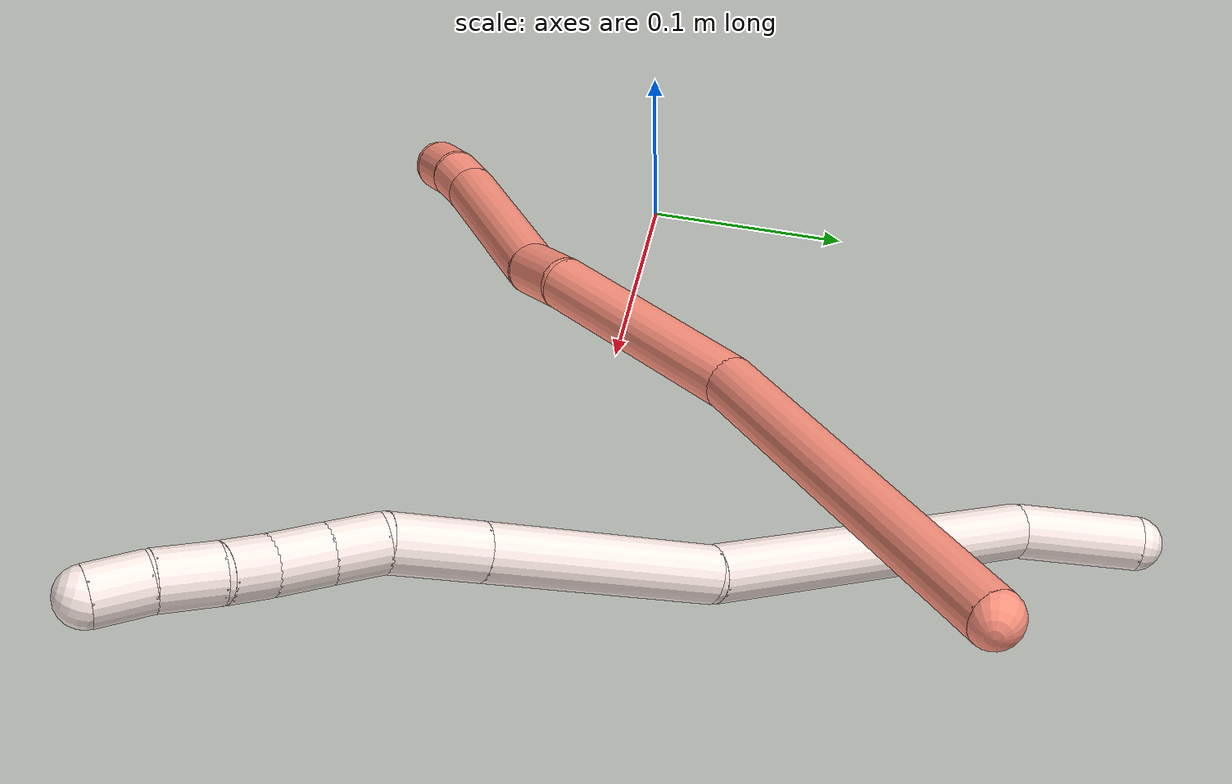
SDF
<sdf version="1.7">
 <world name="default">
  <model name="11">
   <static>0</static>
   <link name="11">
    <collision name="collision-cylinder-e_1_1_4">
     <pose>-0.0001 -0.004616 0.028976 0.157962 -0.003402 -0.000269</pose>
     <geometry><cylinder><radius>0.0125</radius><length>0.058682</length></cylinder></geometry>
     <surface>
      <friction><ode><mu>1.16</mu><mu2>1.16</mu2><slip1>0</slip1><slip2>0</slip2></ode></friction>
      <contact><ode><kp>1e+06</kp><kd>1</kd><max_vel>0</max_vel><min_depth>0.001</min_depth></ode></contact>
     </surface>
    </collision>
    <visual name="visual-cylinder-e_1_1_4">
     <pose>-0.0001 -0.004616 0.028976 0.157962 -0.003402 -0.000269</pose>
     <geometry><cylinder><radius>0.0125</radius><length>0.058682</length></cylinder></geometry>
     <material><ambient>1 0.933333 0.909804 1</ambient></material>
    </visual>
    <collision name="collision-cylinder-e_2_4_5">
     <pose>0.039125 -0.033198 0.133144 0.308565 0.462277 0.073168</pose>
     <geometry><cylinder><radius>0.0125</radius><length>0.176351</length></cylinder></geometry>
     <surface>
      <friction><ode><mu>1.16</mu><mu2>1.16</mu2><slip1>0</slip1><slip2>0</slip2></ode></friction>
      <contact><ode><kp>1e+06</kp><kd>1</kd><max_vel>0</max_vel><min_depth>0.001</min_depth></ode></contact>
     </surface>
    </collision>
    <visual name="visual-cylinder-e_2_4_5">
     <pose>0.039125 -0.033198 0.133144 0.308565 0.462277 0.073168</pose>
     <geometry><cylinder><radius>0.0125</radius><length>0.176351</length></cylinder></geometry>
     <material><ambient>1 0.933333 0.909804 1</ambient></material>
    </visual>
    <collision name="collision-cylinder-e_3_5_6">
     <pose>0.09289 -0.063232 0.258077 0.121363 0.280568 0.017158</pose>
     <geometry><cylinder><radius>0.0125</radius><length>0.104294</length></cylinder></geometry>
     <surface>
      <friction><ode><mu>1.16</mu><mu2>1.16</mu2><slip1>0</slip1><slip2>0</slip2></ode></friction>
      <contact><ode><kp>1e+06</kp><kd>1</kd><max_vel>0</max_vel><min_depth>0.001</min_depth></ode></contact>
     </surface>
    </collision>
    <visual name="visual-cylinder-e_3_5_6">
     <pose>0.09289 -0.063232 0.258077 0.121363 0.280568 0.017158</pose>
     <geometry><cylinder><radius>0.0125</radius><length>0.104294</length></cylinder></geometry>
     <material><ambient>1 0.933333 0.909804 1</ambient></material>
    </visual>
    <collision name="collision-cylinder-e_4_6_7">
     <pose>0.11353 -0.071678 0.327602 0.119711 0.301623 0.018213</pose>
     <geometry><cylinder><radius>0.0125</radius><length>0.041742</length></cylinder></geometry>
     <surface>
      <friction><ode><mu>1.16</mu><mu2>1.16</mu2><slip1>0</slip1><slip2>0</slip2></ode></friction>
      <contact><ode><kp>1e+06</kp><kd>1</kd><max_vel>0</max_vel><min_depth>0.001</min_depth></ode></contact>
     </surface>
    </collision>
    <visual name="visual-cylinder-e_4_6_7">
     <pose>0.11353 -0.071678 0.327602 0.119711 0.301623 0.018213</pose>
     <geometry><cylinder><radius>0.0125</radius><length>0.041742</length></cylinder></geometry>
     <material><ambient>1 0.933333 0.909804 1</ambient></material>
    </visual>
    <collision name="collision-cylinder-e_5_7_8">
     <pose>0.122185 -0.078622 0.35752 0.423212 0.217485 0.046897</pose>
     <geometry><cylinder><radius>0.0125</radius><length>0.022759</length></cylinder></geometry>
     <surface>
      <friction><ode><mu>1.16</mu><mu2>1.16</mu2><slip1>0</slip1><slip2>0</slip2></ode></friction>
      <contact><ode><kp>1e+06</kp><kd>1</kd><max_vel>0</max_vel><min_depth>0.001</min_depth></ode></contact>
     </surface>
    </collision>
    <visual name="visual-cylinder-e_5_7_8">
     <pose>0.122185 -0.078622 0.35752 0.423212 0.217485 0.046897</pose>
     <geometry><cylinder><radius>0.0125</radius><length>0.022759</length></cylinder></geometry>
     <material><ambient>1 0.933333 0.909804 1</ambient></material>
    </visual>
    <collision name="collision-cylinder-e_6_8_9">
     <pose>0.128129 -0.087886 0.378303 0.415589 0.291059 0.061783</pose>
     <geometry><cylinder><radius>0.0125</radius><length>0.024308</length></cylinder></geometry>
     <surface>
      <friction><ode><mu>1.16</mu><mu2>1.16</mu2><slip1>0</slip1><slip2>0</slip2></ode></friction>
      <contact><ode><kp>1e+06</kp><kd>1</kd><max_vel>0</max_vel><min_depth>0.001</min_depth></ode></contact>
     </surface>
    </collision>
    <visual name="visual-cylinder-e_6_8_9">
     <pose>0.128129 -0.087886 0.378303 0.415589 0.291059 0.061783</pose>
     <geometry><cylinder><radius>0.0125</radius><length>0.024308</length></cylinder></geometry>
     <material><ambient>1 0.933333 0.909804 1</ambient></material>
    </visual>
    <collision name="collision-cylinder-e_7_9_10">
     <pose>0.136527 -0.095513 0.397454 0.331564 0.499936 0.085383</pose>
     <geometry><cylinder><radius>0.0125</radius><length>0.020487</length></cylinder></geometry>
     <surface>
      <friction><ode><mu>1.16</mu><mu2>1.16</mu2><slip1>0</slip1><slip2>0</slip2></ode></friction>
      <contact><ode><kp>1e+06</kp><kd>1</kd><max_vel>0</max_vel><min_depth>0.001</min_depth></ode></contact>
     </surface>
    </collision>
    <visual name="visual-cylinder-e_7_9_10">
     <pose>0.136527 -0.095513 0.397454 0.331564 0.499936 0.085383</pose>
     <geometry><cylinder><radius>0.0125</radius><length>0.020487</length></cylinder></geometry>
     <material><ambient>1 0.933333 0.909804 1</ambient></material>
    </visual>
    <collision name="collision-cylinder-e_8_10_11">
     <pose>0.145123 -0.102624 0.418123 0.331225 0.27897 0.046924</pose>
     <geometry><cylinder><radius>0.0125</radius><length>0.026771</length></cylinder></geometry>
     <surface>
      <friction><ode><mu>1.16</mu><mu2>1.16</mu2><slip1>0</slip1><slip2>0</slip2></ode></friction>
      <contact><ode><kp>1e+06</kp><kd>1</kd><max_vel>0</max_vel><min_depth>0.001</min_depth></ode></contact>
     </surface>
    </collision>
    <visual name="visual-cylinder-e_8_10_11">
     <pose>0.145123 -0.102624 0.418123 0.331225 0.27897 0.046924</pose>
     <geometry><cylinder><radius>0.0125</radius><length>0.026771</length></cylinder></geometry>
     <material><ambient>1 0.933333 0.909804 1</ambient></material>
    </visual>
    <collision name="collision-cylinder-e_9_11_2">
     <pose>0.15151 -0.112131 0.44105 0.459437 0.221378 0.051969</pose>
     <geometry><cylinder><radius>0.0125</radius><length>0.024606</length></cylinder></geometry>
     <surface>
      <friction><ode><mu>1.16</mu><mu2>1.16</mu2><slip1>0</slip1><slip2>0</slip2></ode></friction>
      <contact><ode><kp>1e+06</kp><kd>1</kd><max_vel>0</max_vel><min_depth>0.001</min_depth></ode></contact>
     </surface>
    </collision>
    <visual name="visual-cylinder-e_9_11_2">
     <pose>0.15151 -0.112131 0.44105 0.459437 0.221378 0.051969</pose>
     <geometry><cylinder><radius>0.0125</radius><length>0.024606</length></cylinder></geometry>
     <material><ambient>1 0.933333 0.909804 1</ambient></material>
    </visual>
    <collision name="collision-sphere-2">
     <pose>0.154212 -0.117454 0.451808 0 -0 0</pose>
     <geometry><sphere><radius>0.0125</radius></sphere></geometry>
     <surface>
      <friction><ode><mu>1.16</mu><mu2>1.16</mu2><slip1>0</slip1><slip2>0</slip2></ode></friction>
      <contact><ode><kp>1e+06</kp><kd>1</kd><max_vel>0</max_vel><min_depth>0.001</min_depth></ode></contact>
     </surface>
    </collision>
    <visual name="visual-sphere-2">
     <pose>0.154212 -0.117454 0.451808 0 -0 0</pose>
     <geometry><sphere><radius>0.0125</radius></sphere></geometry>
     <material><ambient>1 0.933333 0.909804 1</ambient></material>
    </visual>
    <collision name="collision-sphere-11">
     <pose>0.148809 -0.106809 0.430292 0 -0 0</pose>
     <geometry><sphere><radius>0.0125</radius></sphere></geometry>
     <surface>
      <friction><ode><mu>1.16</mu><mu2>1.16</mu2><slip1>0</slip1><slip2>0</slip2></ode></friction>
      <contact><ode><kp>1e+06</kp><kd>1</kd><max_vel>0</max_vel><min_depth>0.001</min_depth></ode></contact>
     </surface>
    </collision>
    <visual name="visual-sphere-11">
     <pose>0.148809 -0.106809 0.430292 0 -0 0</pose>
     <geometry><sphere><radius>0.0125</radius></sphere></geometry>
     <material><ambient>1 0.933333 0.909804 1</ambient></material>
    </visual>
    <collision name="collision-sphere-10">
     <pose>0.141437 -0.098439 0.405954 0 -0 0</pose>
     <geometry><sphere><radius>0.0125</radius></sphere></geometry>
     <surface>
      <friction><ode><mu>1.16</mu><mu2>1.16</mu2><slip1>0</slip1><slip2>0</slip2></ode></friction>
      <contact><ode><kp>1e+06</kp><kd>1</kd><max_vel>0</max_vel><min_depth>0.001</min_depth></ode></contact>
     </surface>
    </collision>
    <visual name="visual-sphere-10">
     <pose>0.141437 -0.098439 0.405954 0 -0 0</pose>
     <geometry><sphere><radius>0.0125</radius></sphere></geometry>
     <material><ambient>1 0.933333 0.909804 1</ambient></material>
    </visual>
    <collision name="collision-sphere-9">
     <pose>0.131616 -0.092586 0.388954 0 -0 0</pose>
     <geometry><sphere><radius>0.0125</radius></sphere></geometry>
     <surface>
      <friction><ode><mu>1.16</mu><mu2>1.16</mu2><slip1>0</slip1><slip2>0</slip2></ode></friction>
      <contact><ode><kp>1e+06</kp><kd>1</kd><max_vel>0</max_vel><min_depth>0.001</min_depth></ode></contact>
     </surface>
    </collision>
    <visual name="visual-sphere-9">
     <pose>0.131616 -0.092586 0.388954 0 -0 0</pose>
     <geometry><sphere><radius>0.0125</radius></sphere></geometry>
     <material><ambient>1 0.933333 0.909804 1</ambient></material>
    </visual>
    <collision name="collision-sphere-4">
     <pose>-0.0002 -0.009231 0.057951 0 -0 0</pose>
     <geometry><sphere><radius>0.0125</radius></sphere></geometry>
     <surface>
      <friction><ode><mu>1.16</mu><mu2>1.16</mu2><slip1>0</slip1><slip2>0</slip2></ode></friction>
      <contact><ode><kp>1e+06</kp><kd>1</kd><max_vel>0</max_vel><min_depth>0.001</min_depth></ode></contact>
     </surface>
    </collision>
    <visual name="visual-sphere-4">
     <pose>-0.0002 -0.009231 0.057951 0 -0 0</pose>
     <geometry><sphere><radius>0.0125</radius></sphere></geometry>
     <material><ambient>1 0.933333 0.909804 1</ambient></material>
    </visual>
    <collision name="collision-sphere-1">
     <geometry><sphere><radius>0.0125</radius></sphere></geometry>
     <surface>
      <friction><ode><mu>1.16</mu><mu2>1.16</mu2><slip1>0</slip1><slip2>0</slip2></ode></friction>
      <contact><ode><kp>1e+06</kp><kd>1</kd><max_vel>0</max_vel><min_depth>0.001</min_depth></ode></contact>
     </surface>
    </collision>
    <visual name="visual-sphere-1">
     <geometry><sphere><radius>0.0125</radius></sphere></geometry>
     <material><ambient>1 0.933333 0.909804 1</ambient></material>
    </visual>
    <collision name="collision-sphere-8">
     <pose>0.124641 -0.083185 0.367651 0 -0 0</pose>
     <geometry><sphere><radius>0.0125</radius></sphere></geometry>
     <surface>
      <friction><ode><mu>1.16</mu><mu2>1.16</mu2><slip1>0</slip1><slip2>0</slip2></ode></friction>
      <contact><ode><kp>1e+06</kp><kd>1</kd><max_vel>0</max_vel><min_depth>0.001</min_depth></ode></contact>
     </surface>
    </collision>
    <visual name="visual-sphere-8">
     <pose>0.124641 -0.083185 0.367651 0 -0 0</pose>
     <geometry><sphere><radius>0.0125</radius></sphere></geometry>
     <material><ambient>1 0.933333 0.909804 1</ambient></material>
    </visual>
    <collision name="collision-sphere-5">
     <pose>0.078451 -0.057166 0.208337 0 -0 0</pose>
     <geometry><sphere><radius>0.0125</radius></sphere></geometry>
     <surface>
      <friction><ode><mu>1.16</mu><mu2>1.16</mu2><slip1>0</slip1><slip2>0</slip2></ode></friction>
      <contact><ode><kp>1e+06</kp><kd>1</kd><max_vel>0</max_vel><min_depth>0.001</min_depth></ode></contact>
     </surface>
    </collision>
    <visual name="visual-sphere-5">
     <pose>0.078451 -0.057166 0.208337 0 -0 0</pose>
     <geometry><sphere><radius>0.0125</radius></sphere></geometry>
     <material><ambient>1 0.933333 0.909804 1</ambient></material>
    </visual>
    <collision name="collision-sphere-6">
     <pose>0.10733 -0.069299 0.307816 0 -0 0</pose>
     <geometry><sphere><radius>0.0125</radius></sphere></geometry>
     <surface>
      <friction><ode><mu>1.16</mu><mu2>1.16</mu2><slip1>0</slip1><slip2>0</slip2></ode></friction>
      <contact><ode><kp>1e+06</kp><kd>1</kd><max_vel>0</max_vel><min_depth>0.001</min_depth></ode></contact>
     </surface>
    </collision>
    <visual name="visual-sphere-6">
     <pose>0.10733 -0.069299 0.307816 0 -0 0</pose>
     <geometry><sphere><radius>0.0125</radius></sphere></geometry>
     <material><ambient>1 0.933333 0.909804 1</ambient></material>
    </visual>
    <collision name="collision-sphere-7">
     <pose>0.11973 -0.074058 0.347388 0 -0 0</pose>
     <geometry><sphere><radius>0.0125</radius></sphere></geometry>
     <surface>
      <friction><ode><mu>1.16</mu><mu2>1.16</mu2><slip1>0</slip1><slip2>0</slip2></ode></friction>
      <contact><ode><kp>1e+06</kp><kd>1</kd><max_vel>0</max_vel><min_depth>0.001</min_depth></ode></contact>
     </surface>
    </collision>
    <visual name="visual-sphere-7">
     <pose>0.11973 -0.074058 0.347388 0 -0 0</pose>
     <geometry><sphere><radius>0.0125</radius></sphere></geometry>
     <material><ambient>1 0.933333 0.909804 1</ambient></material>
    </visual>
    <inertial>
     <pose>0.075253 -0.054202 0.226585 0 -0 0</pose>
     <mass>0.5</mass>
     <inertia>
      <ixx>0.00059</ixx>
      <ixy>0</ixy>
      <ixz>0</ixz>
      <iyy>0.000603</iyy>
      <iyz>0</iyz>
      <izz>-5.9e-05</izz>
     </inertia>
    </inertial>
   </link>
   <pose>0.196519 0.268503 0.046219 1.09171 -0.811066 0.472179</pose>
  </model>
  <model name="16">
   <static>0</static>
   <link name="16">
    <collision name="collision-cylinder-e_1_1_4">
     <pose>-0.035473 -0.04604 -0.085411 2.64721 -0.350493 -1.22366</pose>
     <geometry><cylinder><radius>0.0125</radius><length>0.206621</length></cylinder></geometry>
     <surface>
      <friction><ode><mu>1.16</mu><mu2>1.16</mu2><slip1>0</slip1><slip2>0</slip2></ode></friction>
      <contact><ode><kp>1e+06</kp><kd>1</kd><max_vel>0</max_vel><min_depth>0.001</min_depth></ode></contact>
     </surface>
    </collision>
    <visual name="visual-cylinder-e_1_1_4">
     <pose>-0.035473 -0.04604 -0.085411 2.64721 -0.350493 -1.22366</pose>
     <geometry><cylinder><radius>0.0125</radius><length>0.206621</length></cylinder></geometry>
     <material><ambient>1 0.576471 0.494118 1</ambient></material>
    </visual>
    <collision name="collision-cylinder-e_2_4_5">
     <pose>-0.100578 -0.12274 -0.210985 2.48956 -0.530392 -1.35354</pose>
     <geometry><cylinder><radius>0.0125</radius><length>0.117153</length></cylinder></geometry>
     <surface>
      <friction><ode><mu>1.16</mu><mu2>1.16</mu2><slip1>0</slip1><slip2>0</slip2></ode></friction>
      <contact><ode><kp>1e+06</kp><kd>1</kd><max_vel>0</max_vel><min_depth>0.001</min_depth></ode></contact>
     </surface>
    </collision>
    <visual name="visual-cylinder-e_2_4_5">
     <pose>-0.100578 -0.12274 -0.210985 2.48956 -0.530392 -1.35354</pose>
     <geometry><cylinder><radius>0.0125</radius><length>0.117153</length></cylinder></geometry>
     <material><ambient>1 0.576471 0.494118 1</ambient></material>
    </visual>
    <collision name="collision-cylinder-e_3_5_6">
     <pose>-0.134536 -0.162826 -0.263243 2.47971 -0.275003 -0.765741</pose>
     <geometry><cylinder><radius>0.0125</radius><length>0.031866</length></cylinder></geometry>
     <surface>
      <friction><ode><mu>1.16</mu><mu2>1.16</mu2><slip1>0</slip1><slip2>0</slip2></ode></friction>
      <contact><ode><kp>1e+06</kp><kd>1</kd><max_vel>0</max_vel><min_depth>0.001</min_depth></ode></contact>
     </surface>
    </collision>
    <visual name="visual-cylinder-e_3_5_6">
     <pose>-0.134536 -0.162826 -0.263243 2.47971 -0.275003 -0.765741</pose>
     <geometry><cylinder><radius>0.0125</radius><length>0.031866</length></cylinder></geometry>
     <material><ambient>1 0.576471 0.494118 1</ambient></material>
    </visual>
    <collision name="collision-cylinder-e_4_6_7">
     <pose>-0.151639 -0.192158 -0.320085 2.72299 -0.255176 -1.08662</pose>
     <geometry><cylinder><radius>0.0125</radius><length>0.101227</length></cylinder></geometry>
     <surface>
      <friction><ode><mu>1.16</mu><mu2>1.16</mu2><slip1>0</slip1><slip2>0</slip2></ode></friction>
      <contact><ode><kp>1e+06</kp><kd>1</kd><max_vel>0</max_vel><min_depth>0.001</min_depth></ode></contact>
     </surface>
    </collision>
    <visual name="visual-cylinder-e_4_6_7">
     <pose>-0.151639 -0.192158 -0.320085 2.72299 -0.255176 -1.08662</pose>
     <geometry><cylinder><radius>0.0125</radius><length>0.101227</length></cylinder></geometry>
     <material><ambient>1 0.576471 0.494118 1</ambient></material>
    </visual>
    <collision name="collision-cylinder-e_5_7_8">
     <pose>-0.168289 -0.216517 -0.373688 2.67579 -0.37262 -1.34295</pose>
     <geometry><cylinder><radius>0.0125</radius><length>0.021286</length></cylinder></geometry>
     <surface>
      <friction><ode><mu>1.16</mu><mu2>1.16</mu2><slip1>0</slip1><slip2>0</slip2></ode></friction>
      <contact><ode><kp>1e+06</kp><kd>1</kd><max_vel>0</max_vel><min_depth>0.001</min_depth></ode></contact>
     </surface>
    </collision>
    <visual name="visual-cylinder-e_5_7_8">
     <pose>-0.168289 -0.216517 -0.373688 2.67579 -0.37262 -1.34295</pose>
     <geometry><cylinder><radius>0.0125</radius><length>0.021286</length></cylinder></geometry>
     <material><ambient>1 0.576471 0.494118 1</ambient></material>
    </visual>
    <collision name="collision-cylinder-e_6_8_2">
     <pose>-0.174682 -0.226905 -0.391363 2.54912 -0.232599 -0.731123</pose>
     <geometry><cylinder><radius>0.0125</radius><length>0.021848</length></cylinder></geometry>
     <surface>
      <friction><ode><mu>1.16</mu><mu2>1.16</mu2><slip1>0</slip1><slip2>0</slip2></ode></friction>
      <contact><ode><kp>1e+06</kp><kd>1</kd><max_vel>0</max_vel><min_depth>0.001</min_depth></ode></contact>
     </surface>
    </collision>
    <visual name="visual-cylinder-e_6_8_2">
     <pose>-0.174682 -0.226905 -0.391363 2.54912 -0.232599 -0.731123</pose>
     <geometry><cylinder><radius>0.0125</radius><length>0.021848</length></cylinder></geometry>
     <material><ambient>1 0.576471 0.494118 1</ambient></material>
    </visual>
    <collision name="collision-sphere-2">
     <pose>-0.1772 -0.232841 -0.400181 0 -0 0</pose>
     <geometry><sphere><radius>0.0125</radius></sphere></geometry>
     <surface>
      <friction><ode><mu>1.16</mu><mu2>1.16</mu2><slip1>0</slip1><slip2>0</slip2></ode></friction>
      <contact><ode><kp>1e+06</kp><kd>1</kd><max_vel>0</max_vel><min_depth>0.001</min_depth></ode></contact>
     </surface>
    </collision>
    <visual name="visual-sphere-2">
     <pose>-0.1772 -0.232841 -0.400181 0 -0 0</pose>
     <geometry><sphere><radius>0.0125</radius></sphere></geometry>
     <material><ambient>1 0.576471 0.494118 1</ambient></material>
    </visual>
    <collision name="collision-sphere-4">
     <pose>-0.070946 -0.092079 -0.170822 0 -0 0</pose>
     <geometry><sphere><radius>0.0125</radius></sphere></geometry>
     <surface>
      <friction><ode><mu>1.16</mu><mu2>1.16</mu2><slip1>0</slip1><slip2>0</slip2></ode></friction>
      <contact><ode><kp>1e+06</kp><kd>1</kd><max_vel>0</max_vel><min_depth>0.001</min_depth></ode></contact>
     </surface>
    </collision>
    <visual name="visual-sphere-4">
     <pose>-0.070946 -0.092079 -0.170822 0 -0 0</pose>
     <geometry><sphere><radius>0.0125</radius></sphere></geometry>
     <material><ambient>1 0.576471 0.494118 1</ambient></material>
    </visual>
    <collision name="collision-sphere-1">
     <geometry><sphere><radius>0.0125</radius></sphere></geometry>
     <surface>
      <friction><ode><mu>1.16</mu><mu2>1.16</mu2><slip1>0</slip1><slip2>0</slip2></ode></friction>
      <contact><ode><kp>1e+06</kp><kd>1</kd><max_vel>0</max_vel><min_depth>0.001</min_depth></ode></contact>
     </surface>
    </collision>
    <visual name="visual-sphere-1">
     <geometry><sphere><radius>0.0125</radius></sphere></geometry>
     <material><ambient>1 0.576471 0.494118 1</ambient></material>
    </visual>
    <collision name="collision-sphere-8">
     <pose>-0.172163 -0.220969 -0.382544 0 -0 0</pose>
     <geometry><sphere><radius>0.0125</radius></sphere></geometry>
     <surface>
      <friction><ode><mu>1.16</mu><mu2>1.16</mu2><slip1>0</slip1><slip2>0</slip2></ode></friction>
      <contact><ode><kp>1e+06</kp><kd>1</kd><max_vel>0</max_vel><min_depth>0.001</min_depth></ode></contact>
     </surface>
    </collision>
    <visual name="visual-sphere-8">
     <pose>-0.172163 -0.220969 -0.382544 0 -0 0</pose>
     <geometry><sphere><radius>0.0125</radius></sphere></geometry>
     <material><ambient>1 0.576471 0.494118 1</ambient></material>
    </visual>
    <collision name="collision-sphere-5">
     <pose>-0.13021 -0.153402 -0.251147 0 -0 0</pose>
     <geometry><sphere><radius>0.0125</radius></sphere></geometry>
     <surface>
      <friction><ode><mu>1.16</mu><mu2>1.16</mu2><slip1>0</slip1><slip2>0</slip2></ode></friction>
      <contact><ode><kp>1e+06</kp><kd>1</kd><max_vel>0</max_vel><min_depth>0.001</min_depth></ode></contact>
     </surface>
    </collision>
    <visual name="visual-sphere-5">
     <pose>-0.13021 -0.153402 -0.251147 0 -0 0</pose>
     <geometry><sphere><radius>0.0125</radius></sphere></geometry>
     <material><ambient>1 0.576471 0.494118 1</ambient></material>
    </visual>
    <collision name="collision-sphere-6">
     <pose>-0.138863 -0.17225 -0.27534 0 -0 0</pose>
     <geometry><sphere><radius>0.0125</radius></sphere></geometry>
     <surface>
      <friction><ode><mu>1.16</mu><mu2>1.16</mu2><slip1>0</slip1><slip2>0</slip2></ode></friction>
      <contact><ode><kp>1e+06</kp><kd>1</kd><max_vel>0</max_vel><min_depth>0.001</min_depth></ode></contact>
     </surface>
    </collision>
    <visual name="visual-sphere-6">
     <pose>-0.138863 -0.17225 -0.27534 0 -0 0</pose>
     <geometry><sphere><radius>0.0125</radius></sphere></geometry>
     <material><ambient>1 0.576471 0.494118 1</ambient></material>
    </visual>
    <collision name="collision-sphere-7">
     <pose>-0.164414 -0.212065 -0.364831 0 -0 0</pose>
     <geometry><sphere><radius>0.0125</radius></sphere></geometry>
     <surface>
      <friction><ode><mu>1.16</mu><mu2>1.16</mu2><slip1>0</slip1><slip2>0</slip2></ode></friction>
      <contact><ode><kp>1e+06</kp><kd>1</kd><max_vel>0</max_vel><min_depth>0.001</min_depth></ode></contact>
     </surface>
    </collision>
    <visual name="visual-sphere-7">
     <pose>-0.164414 -0.212065 -0.364831 0 -0 0</pose>
     <geometry><sphere><radius>0.0125</radius></sphere></geometry>
     <material><ambient>1 0.576471 0.494118 1</ambient></material>
    </visual>
    <inertial>
     <pose>-0.092296 -0.116197 -0.199319 0 -0 0</pose>
     <mass>0.5</mass>
     <inertia>
      <ixx>-0.000561</ixx>
      <ixy>0</ixy>
      <ixz>0</ixz>
      <iyy>-0.000998</iyy>
      <iyz>0</iyz>
      <izz>0.000762</izz>
     </inertia>
    </inertial>
   </link>
   <pose>0.363176 0.206772 0.216148 1.1877 0.670727 1.41307</pose>
  </model>
 </world>
</sdf>
